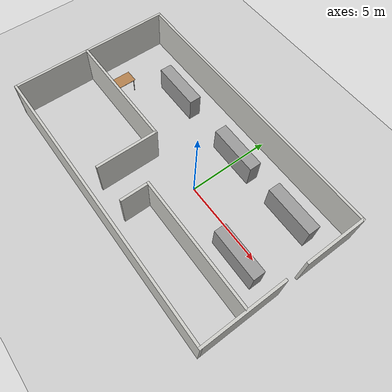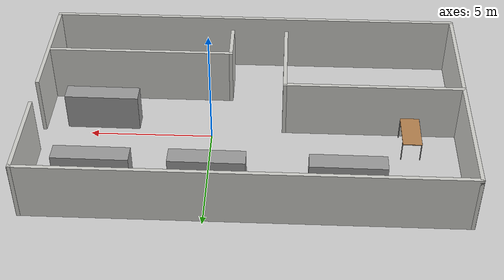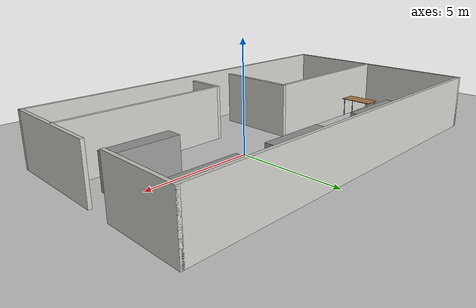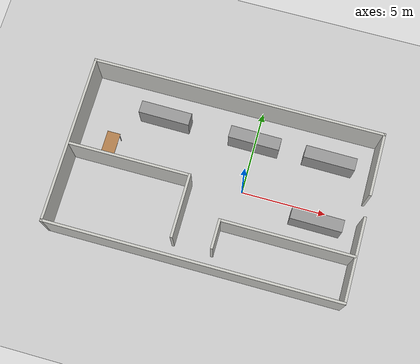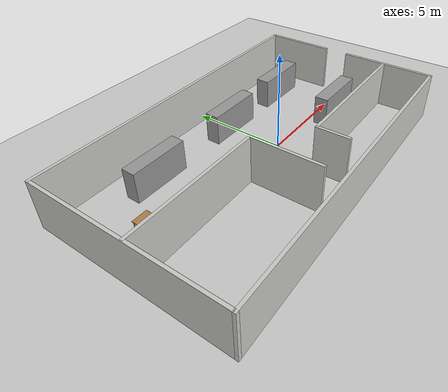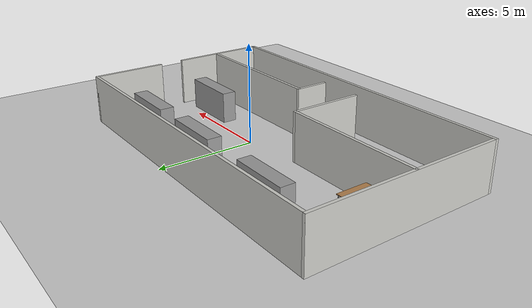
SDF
<sdf version="1.6">
 <world name="default">
  <light name="sun" type="directional">
   <pose>0 0 10 0 -0 0</pose>
   <diffuse>0.8 0.8 0.8 1</diffuse>
   <specular>0.2 0.2 0.2 1</specular>
   <attenuation>
    <range>1000</range>
    <constant>0.9</constant>
    <linear>0.01</linear>
    <quadratic>0.001</quadratic>
   </attenuation>
   <direction>-0.5 0.1 -0.9</direction>
  </light>
  <model name="ground_plane">
   <static>1</static>
   <link name="link">
    <collision name="collision">
     <geometry><plane><normal>0 0 1</normal><size>100 100</size></plane></geometry>
     <surface>
      <contact><collide_bitmask>65535</collide_bitmask></contact>
      <friction><ode><mu>100</mu><mu2>50</mu2></ode></friction>
     </surface>
    </collision>
    <visual name="visual">
     <cast_shadows>0</cast_shadows>
     <geometry><plane><normal>0 0 1</normal><size>100 100</size></plane></geometry>
     <material>
      <script><uri>file://media/materials/scripts/gazebo.material</uri><name>Gazebo/Grey</name></script>
     </material>
    </visual>
   </link>
  </model>
  <gravity>0 0 -9.8</gravity>
  <magnetic_field>6e-06 2.3e-05 -4.2e-05</magnetic_field>
  <atmosphere type="adiabatic"/>
  <physics name="default_physics" default="0" type="ode">
   <max_step_size>0.001</max_step_size>
   <real_time_factor>1</real_time_factor>
   <real_time_update_rate>1000</real_time_update_rate>
  </physics>
  <scene><ambient>0.4 0.4 0.4 1</ambient><background>0.7 0.7 0.7 1</background><shadows>1</shadows></scene>
  <audio><device>default</device></audio>
  <spherical_coordinates>
   <surface_model>EARTH_WGS84</surface_model>
   <latitude_deg>0</latitude_deg>
   <longitude_deg>0</longitude_deg>
   <elevation>0</elevation>
   <heading_deg>0</heading_deg>
  </spherical_coordinates>
  <model name="도면2">
   <pose>-1.56566 -0.149659 0 0 -0 0</pose>
   <link name="Wall_0">
    <collision name="Wall_0_Collision">
     <geometry><box><size>5 0.15 2.5</size></box></geometry>
     <pose>0 0 1.25 0 -0 0</pose>
    </collision>
    <visual name="Wall_0_Visual">
     <pose>0 0 1.25 0 -0 0</pose>
     <geometry><box><size>5 0.15 2.5</size></box></geometry>
     <material>
      <script><uri>file://media/materials/scripts/gazebo.material</uri><name>Gazebo/CeilingTiled</name></script>
      <ambient>1 1 1 1</ambient>
     </material>
     <meta><layer>0</layer></meta>
    </visual>
    <pose>8.55 -2.5 0 0 -0 -1.5708</pose>
   </link>
   <link name="Wall_1">
    <collision name="Wall_1_Collision">
     <geometry><box><size>17.25 0.15 2.5</size></box></geometry>
     <pose>0 0 1.25 0 -0 0</pose>
    </collision>
    <visual name="Wall_1_Visual">
     <pose>0 0 1.25 0 -0 0</pose>
     <geometry><box><size>17.25 0.15 2.5</size></box></geometry>
     <material>
      <script><uri>file://media/materials/scripts/gazebo.material</uri><name>Gazebo/CeilingTiled</name></script>
      <ambient>1 1 1 1</ambient>
     </material>
     <meta><layer>0</layer></meta>
    </visual>
    <pose>0 -4.925 0 0 -0 3.14159</pose>
   </link>
   <link name="Wall_12">
    <collision name="Wall_12_Collision">
     <geometry><box><size>1.75 0.15 2.5</size></box></geometry>
     <pose>0 0 1.25 0 -0 0</pose>
    </collision>
    <visual name="Wall_12_Visual">
     <pose>0 0 1.25 0 -0 0</pose>
     <geometry><box><size>1.75 0.15 2.5</size></box></geometry>
     <material>
      <script><uri>file://media/materials/scripts/gazebo.material</uri><name>Gazebo/CeilingTiled</name></script>
      <ambient>1 1 1 1</ambient>
     </material>
     <meta><layer>0</layer></meta>
    </visual>
    <pose>0.88103 -3.10948 0 0 -0 1.5708</pose>
   </link>
   <link name="Wall_13">
    <collision name="Wall_13_Collision">
     <geometry><box><size>7.75 0.15 2.5</size></box></geometry>
     <pose>0 0 1.25 0 -0 0</pose>
    </collision>
    <visual name="Wall_13_Visual">
     <pose>0 0 1.25 0 -0 0</pose>
     <geometry><box><size>7.75 0.15 2.5</size></box></geometry>
     <material>
      <script><uri>file://media/materials/scripts/gazebo.material</uri><name>Gazebo/CeilingTiled</name></script>
      <ambient>1 1 1 1</ambient>
     </material>
     <meta><layer>0</layer></meta>
    </visual>
    <pose>4.68103 -2.30949 0 0 -0 0</pose>
   </link>
   <link name="Wall_2">
    <collision name="Wall_2_Collision">
     <geometry><box><size>10 0.15 2.5</size></box></geometry>
     <pose>0 0 1.25 0 -0 0</pose>
    </collision>
    <visual name="Wall_2_Visual">
     <pose>0 0 1.25 0 -0 0</pose>
     <geometry><box><size>10 0.15 2.5</size></box></geometry>
     <material>
      <script><uri>file://media/materials/scripts/gazebo.material</uri><name>Gazebo/CeilingTiled</name></script>
      <ambient>1 1 1 1</ambient>
     </material>
     <meta><layer>0</layer></meta>
    </visual>
    <pose>-8.55 -0 0 0 -0 1.5708</pose>
   </link>
   <link name="Wall_3">
    <collision name="Wall_3_Collision">
     <geometry><box><size>17.25 0.15 2.5</size></box></geometry>
     <pose>0 0 1.25 0 -0 0</pose>
    </collision>
    <visual name="Wall_3_Visual">
     <pose>0 0 1.25 0 -0 0</pose>
     <geometry><box><size>17.25 0.15 2.5</size></box></geometry>
     <material>
      <script><uri>file://media/materials/scripts/gazebo.material</uri><name>Gazebo/CeilingTiled</name></script>
      <ambient>1 1 1 1</ambient>
     </material>
     <meta><layer>0</layer></meta>
    </visual>
    <pose>0 4.925 0 0 -0 0</pose>
   </link>
   <link name="Wall_4">
    <collision name="Wall_4_Collision">
     <geometry><box><size>3.75 0.15 2.5</size></box></geometry>
     <pose>0 0 1.25 0 -0 0</pose>
    </collision>
    <visual name="Wall_4_Visual">
     <pose>0 0 1.25 0 -0 0</pose>
     <geometry><box><size>3.75 0.15 2.5</size></box></geometry>
     <material>
      <script><uri>file://media/materials/scripts/gazebo.material</uri><name>Gazebo/CeilingTiled</name></script>
      <ambient>1 1 1 1</ambient>
     </material>
     <meta><layer>0</layer></meta>
    </visual>
    <pose>8.55 3.125 0 0 -0 -1.5708</pose>
   </link>
   <link name="Wall_6">
    <collision name="Wall_6_Collision">
     <geometry><box><size>7.25 0.15 2.5</size></box></geometry>
     <pose>0 0 1.25 0 -0 0</pose>
    </collision>
    <visual name="Wall_6_Visual">
     <pose>0 0 1.25 0 -0 0</pose>
     <geometry><box><size>7.25 0.15 2.5</size></box></geometry>
     <material>
      <script><uri>file://media/materials/scripts/gazebo.material</uri><name>Gazebo/CeilingTiled</name></script>
      <ambient>1 1 1 1</ambient>
     </material>
     <meta><layer>0</layer></meta>
    </visual>
    <pose>-4.9617 -0.286073 0 0 -0 0</pose>
   </link>
   <link name="Wall_7">
    <collision name="Wall_7_Collision">
     <geometry><box><size>3.75 0.15 2.5</size></box></geometry>
     <pose>0 0 1.25 0 -0 0</pose>
    </collision>
    <visual name="Wall_7_Visual">
     <pose>0 0 1.25 0 -0 0</pose>
     <geometry><box><size>3.75 0.15 2.5</size></box></geometry>
     <material>
      <script><uri>file://media/materials/scripts/gazebo.material</uri><name>Gazebo/CeilingTiled</name></script>
      <ambient>1 1 1 1</ambient>
     </material>
     <meta><layer>0</layer></meta>
    </visual>
    <pose>-1.4117 -2.08607 0 0 -0 -1.5708</pose>
   </link>
   <static>1</static>
  </model>
  <model name="box_0">
   <link name="link">
    <inertial>
     <mass>1.54709</mass>
     <inertia><ixx>1.74818</ixx><ixy>0</ixy><ixz>0</ixz><iyy>0.651088</iyy><iyz>0</iyz><izz>1.23298</izz></inertia>
    </inertial>
    <pose>3.71832 -1.57148 0.517731 0 0 -1.57837</pose>
    <visual name="visual">
     <geometry><box><size>0.725964 3.0061 2.12677</size></box></geometry>
     <material>
      <script><name>Gazebo/Grey</name><uri>file://media/materials/scripts/gazebo.material</uri></script>
     </material>
    </visual>
    <collision name="collision">
     <geometry><box><size>0.725964 3.0061 2.12677</size></box></geometry>
     <surface>
      <friction>
       <ode><mu>1</mu><mu2>1</mu2><fdir1>0 0 0</fdir1><slip1>0</slip1><slip2>0</slip2></ode>
       <torsional>
        <coefficient>1</coefficient>
        <patch_radius>0</patch_radius>
        <surface_radius>0</surface_radius>
        <use_patch_radius>1</use_patch_radius>
        <ode><slip>0</slip></ode>
       </torsional>
      </friction>
      <bounce><restitution_coefficient>0</restitution_coefficient><threshold>1e+06</threshold></bounce>
      <contact>
       <collide_without_contact>0</collide_without_contact>
       <collide_without_contact_bitmask>1</collide_without_contact_bitmask>
       <collide_bitmask>1</collide_bitmask>
       <ode>
        <soft_cfm>0</soft_cfm>
        <soft_erp>0.2</soft_erp>
        <kp>1e+13</kp>
        <kd>1</kd>
        <max_vel>0.01</max_vel>
        <min_depth>0</min_depth>
       </ode>
       <bullet>
        <split_impulse>1</split_impulse>
        <split_impulse_penetration_threshold>-0.01</split_impulse_penetration_threshold>
        <soft_cfm>0</soft_cfm>
        <soft_erp>0.2</soft_erp>
        <kp>1e+13</kp>
        <kd>1</kd>
       </bullet>
      </contact>
     </surface>
    </collision>
   </link>
   <static>0</static>
   <pose>0.812401 0.813401 0 0 -0 0</pose>
  </model>
  <model name="box_0_0">
   <link name="link">
    <inertial>
     <mass>1.54709</mass>
     <inertia><ixx>1.74818</ixx><ixy>0</ixy><ixz>0</ixz><iyy>0.651088</iyy><iyz>0</iyz><izz>1.23298</izz></inertia>
    </inertial>
    <pose>3.71832 -1.57148 0.517731 0 0 -1.57837</pose>
    <visual name="visual">
     <geometry><box><size>0.725964 3.0061 2.12677</size></box></geometry>
     <material>
      <script><name>Gazebo/Grey</name><uri>file://media/materials/scripts/gazebo.material</uri></script>
     </material>
    </visual>
    <collision name="collision">
     <geometry><box><size>0.725964 3.0061 2.12677</size></box></geometry>
     <surface>
      <friction>
       <ode><mu>1</mu><mu2>1</mu2><fdir1>0 0 0</fdir1><slip1>0</slip1><slip2>0</slip2></ode>
       <torsional>
        <coefficient>1</coefficient>
        <patch_radius>0</patch_radius>
        <surface_radius>0</surface_radius>
        <use_patch_radius>1</use_patch_radius>
        <ode><slip>0</slip></ode>
       </torsional>
      </friction>
      <bounce><restitution_coefficient>0</restitution_coefficient><threshold>1e+06</threshold></bounce>
      <contact>
       <collide_without_contact>0</collide_without_contact>
       <collide_without_contact_bitmask>1</collide_without_contact_bitmask>
       <collide_bitmask>1</collide_bitmask>
       <ode>
        <soft_cfm>0</soft_cfm>
        <soft_erp>0.2</soft_erp>
        <kp>1e+13</kp>
        <kd>1</kd>
        <max_vel>0.01</max_vel>
        <min_depth>0</min_depth>
       </ode>
       <bullet>
        <split_impulse>1</split_impulse>
        <split_impulse_penetration_threshold>-0.01</split_impulse_penetration_threshold>
        <soft_cfm>0</soft_cfm>
        <soft_erp>0.2</soft_erp>
        <kp>1e+13</kp>
        <kd>1</kd>
       </bullet>
      </contact>
     </surface>
    </collision>
   </link>
   <static>0</static>
   <pose>0.695391 4.50871 0 0 -0 0</pose>
  </model>
  <model name="box_0_1">
   <link name="link">
    <inertial>
     <mass>1.54709</mass>
     <inertia><ixx>1.74818</ixx><ixy>0</ixy><ixz>0</ixz><iyy>0.651088</iyy><iyz>0</iyz><izz>1.23298</izz></inertia>
    </inertial>
    <pose>3.71832 -1.57148 0.517731 0 0 -1.57837</pose>
    <visual name="visual">
     <geometry><box><size>0.725964 3.0061 2.12677</size></box></geometry>
     <material>
      <script><name>Gazebo/Grey</name><uri>file://media/materials/scripts/gazebo.material</uri></script>
     </material>
    </visual>
    <collision name="collision">
     <geometry><box><size>0.725964 3.0061 2.12677</size></box></geometry>
     <surface>
      <friction>
       <ode><mu>1</mu><mu2>1</mu2><fdir1>0 0 0</fdir1><slip1>0</slip1><slip2>0</slip2></ode>
       <torsional>
        <coefficient>1</coefficient>
        <patch_radius>0</patch_radius>
        <surface_radius>0</surface_radius>
        <use_patch_radius>1</use_patch_radius>
        <ode><slip>0</slip></ode>
       </torsional>
      </friction>
      <bounce><restitution_coefficient>0</restitution_coefficient><threshold>1e+06</threshold></bounce>
      <contact>
       <collide_without_contact>0</collide_without_contact>
       <collide_without_contact_bitmask>1</collide_without_contact_bitmask>
       <collide_bitmask>1</collide_bitmask>
       <ode>
        <soft_cfm>0</soft_cfm>
        <soft_erp>0.2</soft_erp>
        <kp>1e+13</kp>
        <kd>1</kd>
        <max_vel>0.01</max_vel>
        <min_depth>0</min_depth>
       </ode>
       <bullet>
        <split_impulse>1</split_impulse>
        <split_impulse_penetration_threshold>-0.01</split_impulse_penetration_threshold>
        <soft_cfm>0</soft_cfm>
        <soft_erp>0.2</soft_erp>
        <kp>1e+13</kp>
        <kd>1</kd>
       </bullet>
      </contact>
     </surface>
    </collision>
   </link>
   <static>0</static>
   <pose>-3.77198 4.52102 0 0 -0 0</pose>
  </model>
  <model name="box_0_2">
   <link name="link">
    <inertial>
     <mass>1.54709</mass>
     <inertia><ixx>1.74818</ixx><ixy>0</ixy><ixz>0</ixz><iyy>0.651088</iyy><iyz>0</iyz><izz>1.23298</izz></inertia>
    </inertial>
    <pose>3.71832 -1.57148 0.517731 0 0 -1.57837</pose>
    <visual name="visual">
     <geometry><box><size>0.725964 3.0061 2.12677</size></box></geometry>
     <material>
      <script><name>Gazebo/Grey</name><uri>file://media/materials/scripts/gazebo.material</uri></script>
     </material>
    </visual>
    <collision name="collision">
     <geometry><box><size>0.725964 3.0061 2.12677</size></box></geometry>
     <surface>
      <friction>
       <ode><mu>1</mu><mu2>1</mu2><fdir1>0 0 0</fdir1><slip1>0</slip1><slip2>0</slip2></ode>
       <torsional>
        <coefficient>1</coefficient>
        <patch_radius>0</patch_radius>
        <surface_radius>0</surface_radius>
        <use_patch_radius>1</use_patch_radius>
        <ode><slip>0</slip></ode>
       </torsional>
      </friction>
      <bounce><restitution_coefficient>0</restitution_coefficient><threshold>1e+06</threshold></bounce>
      <contact>
       <collide_without_contact>0</collide_without_contact>
       <collide_without_contact_bitmask>1</collide_without_contact_bitmask>
       <collide_bitmask>1</collide_bitmask>
       <ode>
        <soft_cfm>0</soft_cfm>
        <soft_erp>0.2</soft_erp>
        <kp>1e+13</kp>
        <kd>1</kd>
        <max_vel>0.01</max_vel>
        <min_depth>0</min_depth>
       </ode>
       <bullet>
        <split_impulse>1</split_impulse>
        <split_impulse_penetration_threshold>-0.01</split_impulse_penetration_threshold>
        <soft_cfm>0</soft_cfm>
        <soft_erp>0.2</soft_erp>
        <kp>1e+13</kp>
        <kd>1</kd>
       </bullet>
      </contact>
     </surface>
    </collision>
   </link>
   <static>0</static>
   <pose>-9.17779 4.60207 0 0 -0 0</pose>
  </model>
  <model name="counter_table">
   <link name="link">
    <pose>-3.43497 0.053924 0 0 -0 0</pose>
    <visual name="back_left_leg">
     <pose>-0.68 0.38 0.5 0 -0 0</pose>
     <geometry><cylinder><radius>0.02</radius><length>0.9</length></cylinder></geometry>
     <material>
      <script><uri>file://media/materials/scripts/gazebo.material</uri><name>Gazebo/Grey</name></script>
     </material>
    </visual>
    <visual name="visual1">
     <pose>0 0 0.95 0 -0 0</pose>
     <geometry><box><size>1.6 0.77 0.03</size></box></geometry>
     <material>
      <script><uri>file://media/materials/scripts/gazebo.material</uri><name>Gazebo/Wood</name></script>
     </material>
    </visual>
    <visual name="front_left_leg">
     <pose>0.68 0.38 0.5 0 -0 0</pose>
     <geometry><cylinder><radius>0.02</radius><length>0.9</length></cylinder></geometry>
     <material>
      <script><uri>file://media/materials/scripts/gazebo.material</uri><name>Gazebo/Grey</name></script>
     </material>
    </visual>
    <visual name="front_right_leg">
     <pose>0.68 -0.38 0.5 0 -0 0</pose>
     <geometry><cylinder><radius>0.02</radius><length>0.9</length></cylinder></geometry>
     <material>
      <script><uri>file://media/materials/scripts/gazebo.material</uri><name>Gazebo/Grey</name></script>
     </material>
    </visual>
    <visual name="back_right_leg">
     <pose>-0.68 -0.38 0.5 0 -0 0</pose>
     <geometry><cylinder><radius>0.02</radius><length>0.9</length></cylinder></geometry>
     <material>
      <script><uri>file://media/materials/scripts/gazebo.material</uri><name>Gazebo/Grey</name></script>
     </material>
    </visual>
    <collision name="surface">
     <pose>0 0 0.95 0 -0 0</pose>
     <geometry><box><size>1.6 0.77 0.03</size></box></geometry>
     <surface>
      <friction>
       <ode><mu>0.6</mu><mu2>0.6</mu2><fdir1>0 0 0</fdir1><slip1>0</slip1><slip2>0</slip2></ode>
       <torsional>
        <coefficient>1</coefficient>
        <patch_radius>0</patch_radius>
        <surface_radius>0</surface_radius>
        <use_patch_radius>1</use_patch_radius>
        <ode><slip>0</slip></ode>
       </torsional>
      </friction>
      <bounce><restitution_coefficient>0</restitution_coefficient><threshold>1e+06</threshold></bounce>
      <contact>
       <collide_without_contact>0</collide_without_contact>
       <collide_without_contact_bitmask>1</collide_without_contact_bitmask>
       <collide_bitmask>1</collide_bitmask>
       <ode>
        <soft_cfm>0</soft_cfm>
        <soft_erp>0.2</soft_erp>
        <kp>1e+13</kp>
        <kd>1</kd>
        <max_vel>0.01</max_vel>
        <min_depth>0</min_depth>
       </ode>
       <bullet>
        <split_impulse>1</split_impulse>
        <split_impulse_penetration_threshold>-0.01</split_impulse_penetration_threshold>
        <soft_cfm>0</soft_cfm>
        <soft_erp>0.2</soft_erp>
        <kp>1e+13</kp>
        <kd>1</kd>
       </bullet>
      </contact>
     </surface>
    </collision>
    <collision name="front_left_leg">
     <pose>0.68 0.38 0.5 0 -0 0</pose>
     <geometry><cylinder><radius>0.02</radius><length>0.9</length></cylinder></geometry>
     <surface>
      <friction>
       <ode><mu>1</mu><mu2>1</mu2><fdir1>0 0 0</fdir1><slip1>0</slip1><slip2>0</slip2></ode>
       <torsional>
        <coefficient>1</coefficient>
        <patch_radius>0</patch_radius>
        <surface_radius>0</surface_radius>
        <use_patch_radius>1</use_patch_radius>
        <ode><slip>0</slip></ode>
       </torsional>
      </friction>
      <bounce><restitution_coefficient>0</restitution_coefficient><threshold>1e+06</threshold></bounce>
      <contact>
       <collide_without_contact>0</collide_without_contact>
       <collide_without_contact_bitmask>1</collide_without_contact_bitmask>
       <collide_bitmask>1</collide_bitmask>
       <ode>
        <soft_cfm>0</soft_cfm>
        <soft_erp>0.2</soft_erp>
        <kp>1e+13</kp>
        <kd>1</kd>
        <max_vel>0.01</max_vel>
        <min_depth>0</min_depth>
       </ode>
       <bullet>
        <split_impulse>1</split_impulse>
        <split_impulse_penetration_threshold>-0.01</split_impulse_penetration_threshold>
        <soft_cfm>0</soft_cfm>
        <soft_erp>0.2</soft_erp>
        <kp>1e+13</kp>
        <kd>1</kd>
       </bullet>
      </contact>
     </surface>
    </collision>
    <collision name="front_right_leg">
     <pose>0.68 -0.38 0.5 0 -0 0</pose>
     <geometry><cylinder><radius>0.02</radius><length>0.9</length></cylinder></geometry>
     <surface>
      <friction>
       <ode><mu>1</mu><mu2>1</mu2><fdir1>0 0 0</fdir1><slip1>0</slip1><slip2>0</slip2></ode>
       <torsional>
        <coefficient>1</coefficient>
        <patch_radius>0</patch_radius>
        <surface_radius>0</surface_radius>
        <use_patch_radius>1</use_patch_radius>
        <ode><slip>0</slip></ode>
       </torsional>
      </friction>
      <bounce><restitution_coefficient>0</restitution_coefficient><threshold>1e+06</threshold></bounce>
      <contact>
       <collide_without_contact>0</collide_without_contact>
       <collide_without_contact_bitmask>1</collide_without_contact_bitmask>
       <collide_bitmask>1</collide_bitmask>
       <ode>
        <soft_cfm>0</soft_cfm>
        <soft_erp>0.2</soft_erp>
        <kp>1e+13</kp>
        <kd>1</kd>
        <max_vel>0.01</max_vel>
        <min_depth>0</min_depth>
       </ode>
       <bullet>
        <split_impulse>1</split_impulse>
        <split_impulse_penetration_threshold>-0.01</split_impulse_penetration_threshold>
        <soft_cfm>0</soft_cfm>
        <soft_erp>0.2</soft_erp>
        <kp>1e+13</kp>
        <kd>1</kd>
       </bullet>
      </contact>
     </surface>
    </collision>
    <collision name="back_right_leg">
     <pose>-0.68 -0.38 0.5 0 -0 0</pose>
     <geometry><cylinder><radius>0.02</radius><length>0.9</length></cylinder></geometry>
     <surface>
      <friction>
       <ode><mu>1</mu><mu2>1</mu2><fdir1>0 0 0</fdir1><slip1>0</slip1><slip2>0</slip2></ode>
       <torsional>
        <coefficient>1</coefficient>
        <patch_radius>0</patch_radius>
        <surface_radius>0</surface_radius>
        <use_patch_radius>1</use_patch_radius>
        <ode><slip>0</slip></ode>
       </torsional>
      </friction>
      <bounce><restitution_coefficient>0</restitution_coefficient><threshold>1e+06</threshold></bounce>
      <contact>
       <collide_without_contact>0</collide_without_contact>
       <collide_without_contact_bitmask>1</collide_without_contact_bitmask>
       <collide_bitmask>1</collide_bitmask>
       <ode>
        <soft_cfm>0</soft_cfm>
        <soft_erp>0.2</soft_erp>
        <kp>1e+13</kp>
        <kd>1</kd>
        <max_vel>0.01</max_vel>
        <min_depth>0</min_depth>
       </ode>
       <bullet>
        <split_impulse>1</split_impulse>
        <split_impulse_penetration_threshold>-0.01</split_impulse_penetration_threshold>
        <soft_cfm>0</soft_cfm>
        <soft_erp>0.2</soft_erp>
        <kp>1e+13</kp>
        <kd>1</kd>
       </bullet>
      </contact>
     </surface>
    </collision>
    <collision name="back_left_leg">
     <pose>-0.68 0.38 0.5 0 -0 0</pose>
     <geometry><cylinder><radius>0.02</radius><length>0.9</length></cylinder></geometry>
     <surface>
      <friction>
       <ode><mu>1</mu><mu2>1</mu2><fdir1>0 0 0</fdir1><slip1>0</slip1><slip2>0</slip2></ode>
       <torsional>
        <coefficient>1</coefficient>
        <patch_radius>0</patch_radius>
        <surface_radius>0</surface_radius>
        <use_patch_radius>1</use_patch_radius>
        <ode><slip>0</slip></ode>
       </torsional>
      </friction>
      <bounce><restitution_coefficient>0</restitution_coefficient><threshold>1e+06</threshold></bounce>
      <contact>
       <collide_without_contact>0</collide_without_contact>
       <collide_without_contact_bitmask>1</collide_without_contact_bitmask>
       <collide_bitmask>1</collide_bitmask>
       <ode>
        <soft_cfm>0</soft_cfm>
        <soft_erp>0.2</soft_erp>
        <kp>1e+13</kp>
        <kd>1</kd>
        <max_vel>0.01</max_vel>
        <min_depth>0</min_depth>
       </ode>
       <bullet>
        <split_impulse>1</split_impulse>
        <split_impulse_penetration_threshold>-0.01</split_impulse_penetration_threshold>
        <soft_cfm>0</soft_cfm>
        <soft_erp>0.2</soft_erp>
        <kp>1e+13</kp>
        <kd>1</kd>
       </bullet>
      </contact>
     </surface>
    </collision>
   </link>
   <static>1</static>
   <pose>-8.03326 3.90237 0 0 -0 1.56917</pose>
  </model>
 </world>
</sdf>
